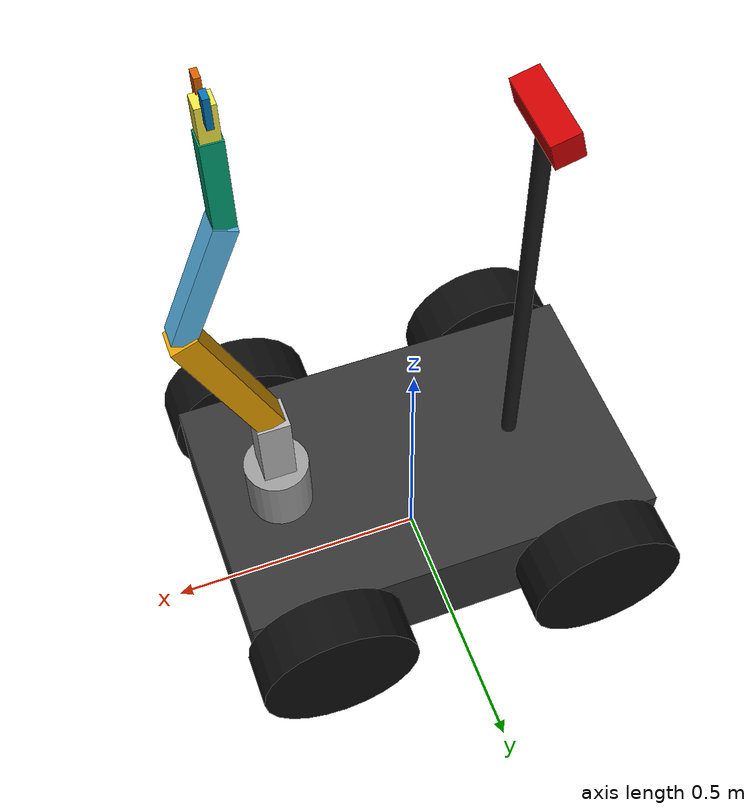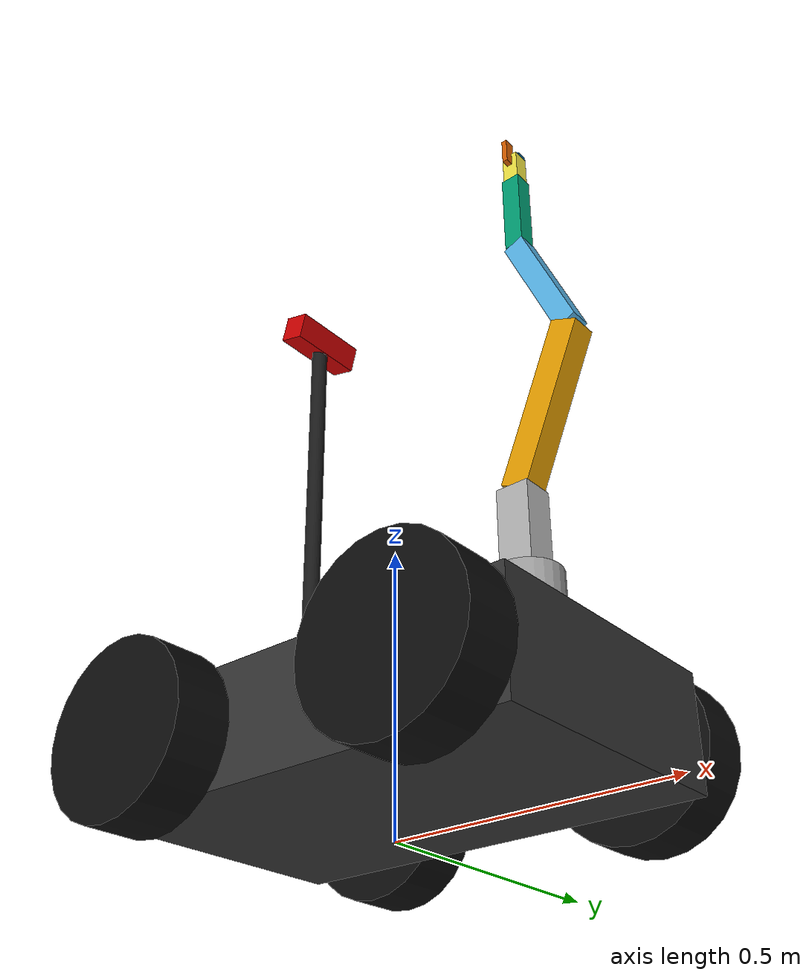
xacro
<?xml version="1.0"?>
<robot xmlns:xacro="http://www.ros.org/wiki/xacro" name="agri_bot">

  <xacro:property name="chassis_l" value="0.8"/>
  <xacro:property name="chassis_w" value="0.5"/>
  <xacro:property name="chassis_h" value="0.2"/>
  <xacro:property name="chassis_m" value="15.0"/>

  <xacro:property name="wheel_r" value="0.15"/>
  <xacro:property name="wheel_w" value="0.1"/>
  <xacro:property name="wheel_m" value="2.0"/>

  <xacro:property name="arm_base_r" value="0.06"/>
  <xacro:property name="arm_base_h" value="0.12"/>
  <xacro:property name="link1_h" value="0.25"/>
  <xacro:property name="link2_h" value="0.20"/>
  <xacro:property name="link3_h" value="0.05"/>

  <xacro:macro name="box_inertia" params="m l w h">
    <inertial>
      <mass value="${m}"/>
      <inertia ixx="${(1/12)*m*(w*w + h*h)}" ixy="0.0" ixz="0.0"
               iyy="${(1/12)*m*(l*l + h*h)}" iyz="0.0"
               izz="${(1/12)*m*(l*l + w*w)}"/>
    </inertial>
  </xacro:macro>

  <xacro:macro name="cylinder_inertia" params="m r h">
    <inertial>
      <mass value="${m}"/>
      <inertia ixx="${(1/12)*m*(3*r*r + h*h)}" ixy="0.0" ixz="0.0"
               iyy="${(1/12)*m*(3*r*r + h*h)}" iyz="0.0"
               izz="${(1/2)*m*r*r}"/>
    </inertial>
  </xacro:macro>

  <link name="base_footprint"/>

  <joint name="base_footprint_joint" type="fixed">
    <parent link="base_footprint"/>
    <child link="base_link"/>
    <origin xyz="0 0 ${wheel_r}" rpy="0 0 0"/>
  </joint>

  <link name="base_link">
    <visual>
      <geometry><box size="${chassis_l} ${chassis_w} ${chassis_h}"/></geometry>
      <material name="chassis_mat"><color rgba="0.2 0.2 0.2 1.0"/></material>
    </visual>
    <collision>
      <geometry><box size="${chassis_l} ${chassis_w} ${chassis_h}"/></geometry>
    </collision>
    <xacro:box_inertia m="${chassis_m}" l="${chassis_l}" w="${chassis_w}" h="${chassis_h}"/>
  </link>

  <xacro:macro name="wheel" params="prefix x_reflect y_reflect">
    <link name="${prefix}_wheel">
      <visual>
        <origin xyz="0 0 0" rpy="${pi/2} 0 0"/>
        <geometry><cylinder radius="${wheel_r}" length="${wheel_w}"/></geometry>
        <material name="wheel_mat"><color rgba="0.05 0.05 0.05 1.0"/></material>
      </visual>
      <collision>
        <origin xyz="0 0 0" rpy="${pi/2} 0 0"/>
        <geometry><cylinder radius="${wheel_r}" length="${wheel_w}"/></geometry>
      </collision>
      <xacro:cylinder_inertia m="${wheel_m}" r="${wheel_r}" h="${wheel_w}"/>
    </link>

    <joint name="${prefix}_wheel_joint" type="continuous">
      <parent link="base_link"/>
      <child link="${prefix}_wheel"/>
      <origin xyz="${x_reflect*(chassis_l/3)} ${y_reflect*(chassis_w/2 + wheel_w/2)} 0" rpy="0 0 0"/>
      <axis xyz="0 1 0"/>
    </joint>
  </xacro:macro>

  <xacro:wheel prefix="front_left"  x_reflect="1"  y_reflect="1"/>
  <xacro:wheel prefix="front_right" x_reflect="1"  y_reflect="-1"/>
  <xacro:wheel prefix="rear_left"   x_reflect="-1" y_reflect="1"/>
  <xacro:wheel prefix="rear_right"  x_reflect="-1" y_reflect="-1"/>

  <link name="arm_base_link">
    <visual>
      <geometry><cylinder radius="0.06" length="0.12"/></geometry>
      <material name="arm_mat"><color rgba="0.6 0.6 0.6 1.0"/></material>
    </visual>
    <collision>
      <geometry><cylinder radius="0.06" length="0.12"/></geometry>
    </collision>
    <xacro:cylinder_inertia m="1.5" r="0.06" h="0.12"/>
  </link>

  <joint name="arm_base_joint" type="fixed">
    <parent link="base_link"/>
    <child link="arm_base_link"/>
    <origin xyz="${chassis_l/3} 0 ${chassis_h/2 + 0.06}" rpy="0 0 0"/>
  </joint>

  <link name="link_1">
    <visual>
      <origin xyz="0 0 0.075" rpy="0 0 0"/>
      <geometry><box size="0.06 0.06 0.15"/></geometry>
    </visual>
    <collision>
      <origin xyz="0 0 0.075" rpy="0 0 0"/>
      <geometry><box size="0.06 0.06 0.15"/></geometry>
    </collision>
    <xacro:box_inertia m="1.0" l="0.06" w="0.06" h="0.15"/>
  </link>

  <joint name="joint_1" type="revolute">
    <parent link="arm_base_link"/>
    <child link="link_1"/>
    <origin xyz="0 0 0.06" rpy="0 0 0"/>
    <axis xyz="0 0 1"/>
    <limit lower="-1.57" upper="1.57" effort="10.0" velocity="1.0"/>
  </joint>

  <link name="link_2">
    <visual>
      <origin xyz="0 0 0.15" rpy="0 0 0"/>
      <geometry><box size="0.05 0.05 0.30"/></geometry>
    </visual>
    <collision>
      <origin xyz="0 0 0.15" rpy="0 0 0"/>
      <geometry><box size="0.05 0.05 0.30"/></geometry>
    </collision>
    <xacro:box_inertia m="1.2" l="0.05" w="0.05" h="0.30"/>
  </link>

  <joint name="joint_2" type="revolute">
    <parent link="link_1"/>
    <child link="link_2"/>
    <origin xyz="0 0 0.15" rpy="0 0.4 0"/> <axis xyz="0 1 0"/>
    <limit lower="-1.57" upper="1.57" effort="15.0" velocity="1.0"/>
  </joint>

  <link name="link_3">
    <visual>
      <origin xyz="0 0 0.12" rpy="0 0 0"/>
      <geometry><box size="0.04 0.04 0.24"/></geometry>
    </visual>
    <collision>
      <origin xyz="0 0 0.12" rpy="0 0 0"/>
      <geometry><box size="0.04 0.04 0.24"/></geometry>
    </collision>
    <xacro:box_inertia m="0.8" l="0.04" w="0.04" h="0.24"/>
  </link>

  <joint name="joint_3" type="revolute">
    <parent link="link_2"/>
    <child link="link_3"/>
    <origin xyz="0 0 0.30" rpy="0 -0.8 0"/> <axis xyz="0 1 0"/>
    <limit lower="-1.57" upper="1.57" effort="10.0" velocity="1.0"/>
  </joint>

  <link name="link_4">
    <visual>
      <origin xyz="0 0 0.08" rpy="0 0 0"/>
      <geometry><box size="0.035 0.035 0.16"/></geometry>
    </visual>
    <collision>
      <origin xyz="0 0 0.08" rpy="0 0 0"/>
      <geometry><box size="0.035 0.035 0.16"/></geometry>
    </collision>
    <xacro:box_inertia m="0.5" l="0.035" w="0.035" h="0.16"/>
  </link>

  <joint name="joint_4" type="revolute">
    <parent link="link_3"/>
    <child link="link_4"/>
    <origin xyz="0 0 0.24" rpy="0 0.4 0"/>
    <axis xyz="0 1 0"/>
    <limit lower="-1.57" upper="1.57" effort="8.0" velocity="1.2"/>
  </joint>

  <link name="link_5">
    <visual>
      <origin xyz="0 0 0.03" rpy="0 0 0"/>
      <geometry><box size="0.03 0.03 0.06"/></geometry>
    </visual>
    <collision>
      <origin xyz="0 0 0.03" rpy="0 0 0"/>
      <geometry><box size="0.03 0.03 0.06"/></geometry>
    </collision>
    <xacro:box_inertia m="0.3" l="0.03" w="0.03" h="0.06"/>
  </link>

  <joint name="joint_5" type="revolute">
    <parent link="link_4"/>
    <child link="link_5"/>
    <origin xyz="0 0 0.16" rpy="0 0 0"/>
    <axis xyz="0 1 0"/>
    <limit lower="-1.57" upper="1.57" effort="5.0" velocity="1.5"/>
  </joint>

  <link name="left_finger">
    <visual><geometry><box size="0.01 0.02 0.05"/></geometry></visual>
    <collision><geometry><box size="0.01 0.02 0.05"/></geometry></collision>
    <xacro:box_inertia m="0.05" l="0.01" w="0.02" h="0.05"/>
  </link>

  <joint name="left_finger_joint" type="prismatic">
    <parent link="link_5"/> <child link="left_finger"/>
    <origin xyz="0 0.02 0.06" rpy="0 0 0"/>
    <axis xyz="0 1 0"/>
    <limit lower="-0.02" upper="0.0" effort="5.0" velocity="0.1"/>
  </joint>

  <link name="right_finger">
    <visual><geometry><box size="0.01 0.02 0.05"/></geometry></visual>
    <collision><geometry><box size="0.01 0.02 0.05"/></geometry></collision>
    <xacro:box_inertia m="0.05" l="0.01" w="0.02" h="0.05"/>
  </link>

  <joint name="right_finger_joint" type="prismatic">
    <parent link="link_5"/> <child link="right_finger"/>
    <origin xyz="0 -0.02 0.06" rpy="0 0 0"/>
    <axis xyz="0 -1 0"/>
    <limit lower="-0.02" upper="0.0" effort="5.0" velocity="0.1"/>
  </joint>

  <ros2_control name="IgnitionSystem" type="system">
    <hardware>
      <plugin>gz_ros2_control/GazeboSimSystem</plugin>
    </hardware>

    <joint name="front_left_wheel_joint"><command_interface name="velocity"/><state_interface name="position"/><state_interface name="velocity"/></joint>
    <joint name="front_right_wheel_joint"><command_interface name="velocity"/><state_interface name="position"/><state_interface name="velocity"/></joint>
    <joint name="rear_left_wheel_joint"><command_interface name="velocity"/><state_interface name="position"/><state_interface name="velocity"/></joint>
    <joint name="rear_right_wheel_joint"><command_interface name="velocity"/><state_interface name="position"/><state_interface name="velocity"/></joint>

    <joint name="joint_1"><command_interface name="position"/><state_interface name="position"/><state_interface name="velocity"/></joint>
    <joint name="joint_2"><command_interface name="position"/><state_interface name="position"/><state_interface name="velocity"/></joint>
    <joint name="joint_3"><command_interface name="position"/><state_interface name="position"/><state_interface name="velocity"/></joint>
    <joint name="joint_4"><command_interface name="position"/><state_interface name="position"/><state_interface name="velocity"/></joint>
    <joint name="joint_5"><command_interface name="position"/><state_interface name="position"/><state_interface name="velocity"/></joint> <joint name="left_finger_joint"><command_interface name="position"/><state_interface name="position"/><state_interface name="velocity"/></joint>
    <joint name="right_finger_joint"><command_interface name="position"/><state_interface name="position"/><state_interface name="velocity"/></joint>
  </ros2_control>

  <gazebo>
    <plugin filename="gz_ros2_control-system" name="gz_ros2_control::GazeboSimROS2ControlPlugin">
      <parameters>$(find agri_bot_description)/config/agri_bot_controllers.yaml</parameters>
    </plugin>
  </gazebo>

 <link name="camera_mast">
    <visual>
      <geometry><cylinder radius="0.015" length="0.8"/></geometry>
      <material name="black"><color rgba="0.1 0.1 0.1 1.0"/></material>
    </visual>
    <collision>
      <geometry><cylinder radius="0.015" length="0.8"/></geometry>
    </collision>
    <inertial>
      <mass value="0.5"/>
      <inertia ixx="0.01" ixy="0.0" ixz="0.0" iyy="0.01" iyz="0.0" izz="0.001"/>
    </inertial>
  </link>

  <joint name="camera_mast_joint" type="fixed">
    <parent link="base_link"/>
    <child link="camera_mast"/>
    <origin xyz="-0.2 0.0 0.5" rpy="0.0 0.0 0.0"/>
  </joint>

  <link name="camera_link">
    <visual>
      <geometry><box size="0.05 0.15 0.05"/></geometry>
      <material name="red"><color rgba="0.8 0.0 0.0 1.0"/></material>
    </visual>
    <collision>
      <geometry><box size="0.05 0.15 0.05"/></geometry>
    </collision>
    <inertial>
      <mass value="0.2"/>
      <inertia ixx="0.001" ixy="0.0" ixz="0.0" iyy="0.001" iyz="0.0" izz="0.001"/>
    </inertial>
  </link>

  <joint name="camera_joint" type="fixed">
    <parent link="camera_mast"/>
    <child link="camera_link"/>
    <origin xyz="0.0 0.0 0.4" rpy="0.0 0.26 0.0"/>
  </joint>

  <link name="camera_link_optical"/>
  <joint name="camera_optical_joint" type="fixed">
    <parent link="camera_link"/>
    <child link="camera_link_optical"/>
    <origin xyz="0 0 0" rpy="-1.5708 0 -1.5708"/>
  </joint>

  <gazebo reference="camera_link">
    <sensor type="rgbd_camera" name="rgbd_camera">
      <update_rate>15.0</update_rate>
      <always_on>true</always_on>
      <visualize>true</visualize>
      <topic>camera</topic>
      <camera>
        <horizontal_fov>1.4</horizontal_fov>
        <image>
          <width>640</width>
          <height>480</height>
          <format>R8G8B8</format>
        </image>
        <clip>
          <near>0.05</near>
          <far>10.0</far>
        </clip>
      </camera>
    </sensor>
  </gazebo>

</robot>
